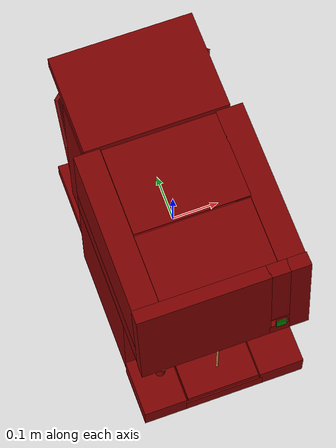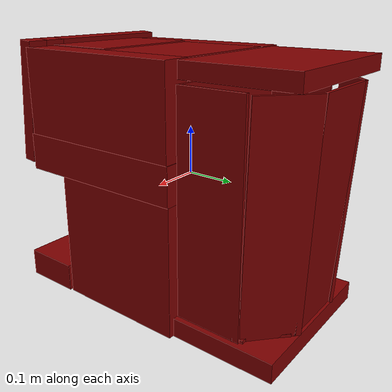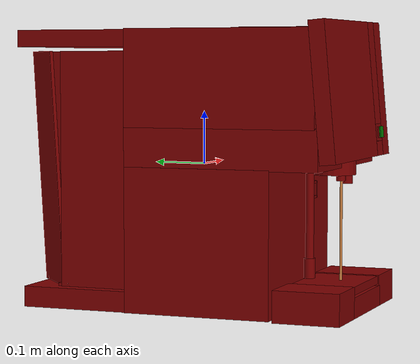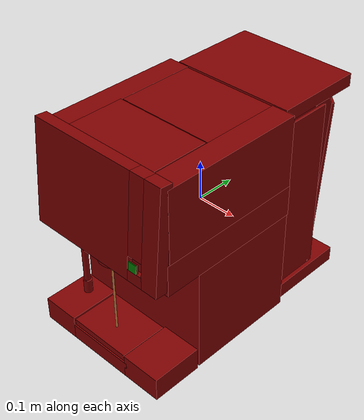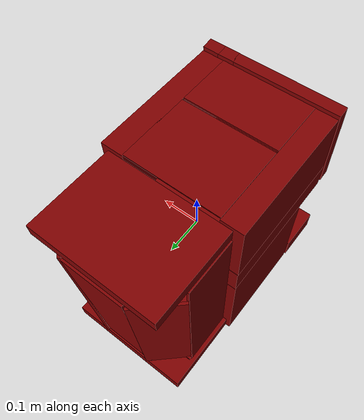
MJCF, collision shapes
<?xml version='1.0' encoding='UTF-8'?>
<mujoco model="model">
  <compiler angle="radian"/>
  <asset>
    <mesh file="visuals/Body001.obj" name="Body001_vis"/>
    <mesh file="visuals/Button001.obj" name="Button001_vis"/>
    <mesh file="visuals/Container001_Clear.obj" name="Container001_Clear_vis"/>
    <mesh file="visuals/Lid001.obj" name="Lid001_vis"/>
    <mesh file="visuals/Lid002.obj" name="Lid002_vis"/>
    <mesh file="visuals/Lid003.obj" name="Lid003_vis"/>
    <texture file="visuals/T_BC001.png" name="Body001_material" type="2d"/>
    <material name="Body001_material" rgba="1 1 1 1.0" texture="Body001_material" shininess="0.4472135901451111" specular="0.3103448502657381"/>
    <texture file="visuals/T_BC001.png" name="Button001_material" type="2d"/>
    <material name="Button001_material" rgba="1 1 1 1.0" texture="Button001_material" shininess="0.4472135901451111" specular="0.3103448502657381"/>
    <texture file="visuals/T_BC001.png" name="Container001_Clear_material" type="2d"/>
    <material name="Container001_Clear_material" rgba="1 1 1 0.5" texture="Container001_Clear_material" shininess="0.5" specular="0.3103448502657381"/>
    <texture file="visuals/T_BC001.png" name="Lid003_material" type="2d"/>
    <material name="Lid003_material" rgba="1 1 1 1.0" texture="Lid003_material" shininess="0.4472135901451111" specular="0.3103448502657381"/>
    <texture file="visuals/T_BC001.png" name="Lid001_material" type="2d"/>
    <material name="Lid001_material" rgba="1 1 1 1.0" texture="Lid001_material" shininess="0.4472135901451111" specular="0.3103448502657381"/>
    <texture file="visuals/T_BC001.png" name="Lid002_material" type="2d"/>
    <material name="Lid002_material" rgba="1 1 1 1.0" texture="Lid002_material" shininess="0.4472135901451111" specular="0.3103448502657381"/>
  </asset>
  <default>
    <default class="visual">
      <geom conaffinity="0" contype="0" group="1" type="mesh"/>
    </default>
    <default class="collision">
      <geom group="0" rgba="0.5 0 0 0.5"/>
    </default>
    <default class="spawn">
      <geom group="0" rgba="1 1 1 0.5" contype="0" conaffinity="0"/>
      <site group="0" rgba="1 1 1 0.5"/>
    </default>
    <default class="region">
      <geom group="1" conaffinity="0" contype="0" rgba="0 1 0 0"/>
    </default>
  </default>
  <worldbody>
    <body>
      <body name="object">
        <geom class="collision" type="box" pos="0.119695 -0.318221 0.060741" size="0.011253004893660545 0.0011331994319334626 0.010624666698276997" quat="0.9990482330322266 -0.04361938312649727 -0.0 0.0" name="start_button" rgba="0.0 0.5 0 0.5"/>
        <site rgba="0 0 0 0" size="0.009999999776482582 0.009999999776482582" pos="0.001521 -0.273310 -0.214361" name="receptacle_place_site"/>
        <site type="cylinder" rgba="0.8 0.5 0.25 1" size="0.0024999999441206455 0.09999999403953552" pos="0.001521 -0.273310 -0.121649" name="coffee_liquid"/>
        <geom mesh="Body001_vis" type="mesh" solimp="0.998 0.998 0.001" solref="0.001 1" density="100" friction="0.95 0.3 0.1" class="visual" material="Body001_material"/>
        <geom class="collision" type="box" pos="-0.134823 -0.262584 -0.241223" size="0.04780609533190727 0.0627865344285965 0.029584329575300217" quat="1.0 0.0 0.0 0.0"/>
        <geom class="collision" type="box" pos="-0.041695 -0.290726 0.141861" size="0.14093397557735443 0.015021247789263725 0.12811273336410522" quat="0.9990295767784119 -0.0440446212887764 -1.0805361907287307e-17 4.996576412190894e-20"/>
        <geom class="collision" type="box" pos="0.001289 -0.096669 0.038660" size="0.18133977055549622 0.18675203621387482 0.0388786718249321" quat="1.0 0.0 0.0 0.0"/>
        <geom class="collision" type="box" pos="0.131699 -0.262584 -0.241223" size="0.050210438668727875 0.06278654932975769 0.029584338888525963" quat="1.0 0.0 0.0 0.0"/>
        <geom class="collision" type="box" pos="0.000338 -0.265380 -0.251236" size="0.08754803240299225 0.059990547597408295 0.019571099430322647" quat="1.0 0.0 0.0 0.0"/>
        <geom class="collision" type="cylinder" pos="0.000510 -0.260533 0.009069" size="0.04037771001458168 0.023910516873002052" quat="1.0 0.0 0.0 0.0"/>
        <geom class="collision" type="cylinder" pos="0.000510 -0.272546 -0.018438" size="0.008941007778048515 0.007940022274851799" quat="1.0 0.0 0.0 0.0"/>
        <geom class="collision" type="cylinder" pos="0.117743 -0.250448 -0.011362" size="0.01128160860389471 0.028964461758732796" quat="1.0 0.0 0.0 0.0"/>
        <geom class="collision" type="cylinder" pos="-0.120871 -0.250618 -0.080505" size="0.007660144008696079 0.07949106395244598" quat="1.0 0.0 0.0 0.0"/>
        <geom class="collision" type="cylinder" pos="-0.120871 -0.250515 -0.176364" size="0.010353024117648602 0.018009692430496216" quat="1.0 0.0 0.0 0.0"/>
        <geom class="collision" type="box" pos="-0.101855 -0.250291 -0.022326" size="0.011885647661983967 0.003399388864636421 0.0022346018813550472" quat="1.0 0.0 0.0 0.0"/>
        <geom class="collision" type="box" pos="-0.101855 -0.250291 -0.049095" size="0.011885648593306541 0.003399389795958996 0.0022346023470163345" quat="1.0 0.0 0.0 0.0"/>
        <geom class="collision" type="box" pos="-0.089259 -0.250291 -0.035779" size="0.0033965324983000755 0.0033993904944509268 0.015550194308161736" quat="1.0 0.0 0.0 0.0"/>
        <geom class="collision" type="cylinder" pos="-0.120871 -0.250618 0.017539" size="0.015312847681343555 0.010616145096719265" quat="1.0 0.0 0.0 0.0"/>
        <geom class="collision" type="box" pos="0.001296 -0.012325 0.254964" size="0.12438777089118958 0.09775403141975403 0.001296260510571301" quat="1.0 0.0 0.0 0.0"/>
        <geom class="collision" type="box" pos="0.153299 -0.094366 0.165500" size="0.029329705983400345 0.18281696736812592 0.09076027572154999" quat="1.0 0.0 0.0 0.0"/>
        <geom class="collision" type="box" pos="0.000182 0.194614 -0.251249" size="0.16807852685451508 0.10855495184659958 0.01955723762512207" quat="1.0 0.0 0.0 0.0"/>
        <geom class="collision" type="box" pos="0.000106 -0.051538 -0.133674" size="0.18049804866313934 0.1410188376903534 0.13559068739414215" quat="1.0 0.0 0.0 0.0"/>
        <geom class="collision" type="box" pos="-0.152250 -0.093713 0.165500" size="0.028279060497879982 0.18346981704235077 0.09076027572154999" quat="1.0 0.0 0.0 0.0"/>
        <geom class="collision" type="box" pos="0.160590 -0.290726 0.141861" size="0.021833641454577446 0.015021247789263725 0.12811273336410522" quat="0.9990295767784119 -0.0440446212887764 -1.0805361907287307e-17 4.996576412190894e-20"/>
        <geom class="collision" type="box" pos="0.118466 -0.288040 0.172256" size="0.021833641454577446 0.015021247789263725 0.09759920090436935" quat="0.9990295767784119 -0.0440446212887764 -1.0805361907287307e-17 4.996576412190894e-20"/>
        <geom class="collision" type="box" pos="0.118466 -0.300776 0.028104" size="0.021833641454577446 0.0150212487205863 0.013912685215473175" quat="0.9990295767784119 -0.0440446212887764 -1.0805361907287307e-17 4.996576412190894e-20"/>
        <geom class="collision" type="box" pos="0.118466 -0.291840 0.058458" size="0.021833641454577446 0.00879106018692255 0.017746800556778908" quat="0.9990295767784119 -0.0440446212887764 -1.0805361907287307e-17 4.996576412190894e-20"/>
        <body name="Button001">
          <joint axis="-9.694627089473551e-19 0.9956339001655579 -0.0933440551161766" pos="0.119668 -0.316262 0.060537" limited="true" name="Button001_joint" range="0.0 0.005" type="slide" damping="1" frictionloss="1" armature=".01" stiffness="0.2" springref="-0.1"/>
          <geom mesh="Button001_vis" type="mesh" solimp="0.998 0.998 0.001" solref="0.001 1" density="100" friction="0.95 0.3 0.1" class="visual" material="Button001_material"/>
          <geom class="collision" type="box" pos="0.119695 -0.315141 0.060316" size="0.011253004893660545 0.0014834600733593106 0.010624666698276997" quat="0.9990482330322266 -0.04361938312649727 -0.0 0.0"/>
        </body>
        <body name="Container001_Clear">
          <joint axis="0.0 0.0 1.0" pos="0.000882 0.207999 -0.003057" limited="true" name="Container001_Clear_joint" range="0.0 0.1" type="slide" damping="1" frictionloss="1" armature=".01" stiffness="0.05"/>
          <geom mesh="Container001_Clear_vis" type="mesh" solimp="0.998 0.998 0.001" solref="0.001 1" density="100" friction="0.95 0.3 0.1" class="visual" material="Container001_Clear_material"/>
          <geom class="collision" type="box" pos="-0.155242 0.161019 -0.006984" size="0.003073263680562377 0.06835802644491196 0.22219760715961456" quat="1.0 0.0 0.0 0.0"/>
          <geom class="collision" type="box" pos="0.156812 0.161019 -0.006984" size="0.003073263680562377 0.06835802644491196 0.22219760715961456" quat="1.0 0.0 0.0 0.0"/>
          <geom class="collision" type="box" pos="-0.000063 0.307901 -0.006984" size="0.003073263680562377 0.07720185816287994 0.22219760715961456" quat="0.706840455532074 -0.019407251849770546 -0.019407249987125397 -0.7068403959274292"/>
          <geom class="collision" type="box" pos="-0.117179 0.273775 -0.006984" size="0.0030732634477317333 0.05834748595952988 0.22219757735729218" quat="0.9163600206375122 -0.010966429486870766 -0.025159889832139015 -0.3994133472442627"/>
          <geom class="collision" type="box" pos="0.117735 0.273775 -0.006984" size="0.0030732634477317333 0.05834748595952988 0.22219757735729218" quat="0.40577176213264465 -0.025083079934120178 -0.011141007766127586 -0.9135622382164001"/>
          <geom class="collision" type="box" pos="-0.000730 0.095739 -0.006984" size="0.003073263680562377 0.15569299459457397 0.22219760715961456" quat="0.7071068286895752 0.0 -0.0 -0.7071067690849304"/>
          <geom class="collision" type="box" pos="-0.000730 0.164264 -0.226107" size="0.003073263680562377 0.15569299459457397 0.07212930917739868" quat="0.5 -0.5 -0.4999999701976776 -0.5"/>
          <geom class="collision" type="box" pos="-0.000730 0.261808 -0.226107" size="0.003073263680562377 0.07902587950229645 0.03594767302274704" quat="0.5 -0.5 -0.4999999701976776 -0.5"/>
          <geom class="collision" type="box" pos="-0.094317 0.229723 -0.226107" size="0.003073263680562377 0.055044565349817276 0.03594767302274704" quat="0.6541367769241333 -0.2685239613056183 -0.6541367173194885 -0.2685239613056183"/>
          <geom class="collision" type="box" pos="0.096545 0.229723 -0.226107" size="0.003073263680562377 0.055044565349817276 0.03594767302274704" quat="0.6541368961334229 -0.26852402091026306 0.654136598110199 0.2685239017009735"/>
          <body name="Lid003">
            <joint axis="1.0 0.0 0.0" pos="0.000885 0.094340 0.253879" limited="true" name="Lid003_joint" range="0.0 1.5707963267948966" type="hinge" damping="1" frictionloss="1" armature=".01" stiffness="0.05"/>
            <geom mesh="Lid003_vis" type="mesh" solimp="0.998 0.998 0.001" solref="0.001 1" density="100" friction="0.95 0.3 0.1" class="visual" material="Lid003_material"/>
            <geom class="collision" type="box" pos="0.000234 0.206537 0.239120" size="0.15742236375808716 0.1126856729388237 0.01591619849205017" quat="1.0 0.0 0.0 0.0"/>
          </body>
        </body>
        <body name="Lid001">
          <joint axis="0.0 0.0 1.0" pos="-0.002427 -0.263220 -0.220548" limited="true" name="Lid001_joint" range="0.0 0.05" type="slide" damping="1" frictionloss="1" armature=".01" stiffness="0.05"/>
          <geom mesh="Lid001_vis" type="mesh" solimp="0.998 0.998 0.001" solref="0.001 1" density="100" friction="0.95 0.3 0.1" class="visual" material="Lid001_material"/>
          <geom class="collision" type="box" pos="-0.002061 -0.263505 -0.220630" size="0.08113859593868256 0.05987848713994026 0.007675427012145519" quat="1.0 0.0 0.0 0.0"/>
        </body>
        <body name="Lid002">
          <joint axis="-1.0 0.0 0.0" pos="-0.001197 -0.114527 0.254182" limited="true" name="Lid002_joint" range="0.0 1.5707963267948966" type="hinge" damping="1" frictionloss="1" armature=".01" stiffness="0.05"/>
          <geom mesh="Lid002_vis" type="mesh" solimp="0.998 0.998 0.001" solref="0.001 1" density="100" friction="0.95 0.3 0.1" class="visual" material="Lid002_material"/>
          <geom class="collision" type="box" pos="-0.000396 -0.189353 0.256149" size="0.12341208010911942 0.07487358152866364 0.0022152543533593416" quat="1.0 0.0 0.0 0.0"/>
        </body>
        <geom class="region" name="reg_main" type="box" pos="0.0 -0.00010550000000000836 0.0" size="0.179812 0.32341050000000005 0.268199"/>
      </body>
    </body>
  </worldbody>
  <actuator>
    <motor name="Button001_joint_actuator" joint="Button001_joint" gear="0.1"/>
    <motor name="Container001_Clear_joint_actuator" joint="Container001_Clear_joint" gear="30"/>
    <motor name="Lid001_joint_actuator" joint="Lid001_joint" gear="5"/>
    <motor name="Lid002_joint_actuator" joint="Lid002_joint" gear="5"/>
    <motor name="Lid003_joint_actuator" joint="Lid003_joint" gear="10"/>
  </actuator>
</mujoco>
